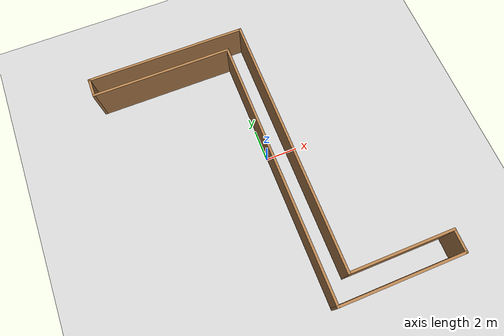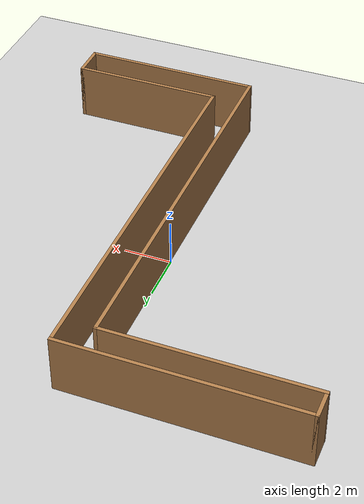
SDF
<sdf version="1.7">
 <world name="default">
  <light name="sun" type="directional">
   <pose>0 0 10 0 -0 0</pose>
   <diffuse>0.8 0.8 0.8 1</diffuse>
   <specular>0.2 0.2 0.2 1</specular>
   <attenuation>
    <range>1000</range>
    <constant>0.9</constant>
    <linear>0.01</linear>
    <quadratic>0.001</quadratic>
   </attenuation>
   <direction>-0.5 0.1 -0.9</direction>
   <spot><inner_angle>0</inner_angle><outer_angle>0</outer_angle><falloff>0</falloff></spot>
  </light>
  <model name="ground_plane">
   <static>1</static>
   <link name="link">
    <collision name="collision">
     <geometry><plane><normal>0 0 1</normal><size>100 100</size></plane></geometry>
     <surface>
      <contact><collide_bitmask>65535</collide_bitmask></contact>
      <friction><ode><mu>100</mu><mu2>50</mu2></ode></friction>
     </surface>
    </collision>
    <visual name="visual">
     <cast_shadows>0</cast_shadows>
     <geometry><plane><normal>0 0 1</normal><size>100 100</size></plane></geometry>
     <material>
      <script><uri>file://media/materials/scripts/gazebo.material</uri><name>Gazebo/Grey</name></script>
     </material>
    </visual>
   </link>
  </model>
  <gravity>0 0 -9.8</gravity>
  <magnetic_field>6e-06 2.3e-05 -4.2e-05</magnetic_field>
  <atmosphere type="adiabatic"/>
  <physics type="ode">
   <max_step_size>0.001</max_step_size>
   <real_time_factor>1</real_time_factor>
   <real_time_update_rate>1000</real_time_update_rate>
  </physics>
  <scene><ambient>0.4 0.4 0.4 1</ambient><background>0.7 0.7 0.7 1</background><shadows>1</shadows></scene>
  <audio><device>default</device></audio>
  <spherical_coordinates>
   <surface_model>EARTH_WGS84</surface_model>
   <latitude_deg>0</latitude_deg>
   <longitude_deg>0</longitude_deg>
   <elevation>0</elevation>
   <heading_deg>0</heading_deg>
  </spherical_coordinates>
  <model name="Zshape">
   <pose>-0.402562 -0.874712 0 0 -0 0</pose>
   <link name="Wall_10">
    <collision name="Wall_10_Collision">
     <geometry><box><size>6.5 0.15 2.5</size></box></geometry>
     <pose>0 0 1.25 0 -0 0</pose>
    </collision>
    <visual name="Wall_10_Visual">
     <pose>0 0 1.25 0 -0 0</pose>
     <geometry><box><size>6.5 0.15 2.5</size></box></geometry>
     <material>
      <script><uri>file://media/materials/scripts/gazebo.material</uri><name>Gazebo/Wood</name></script>
      <ambient>1 1 1 1</ambient>
     </material>
     <meta><layer>0</layer></meta>
    </visual>
    <pose>4.925 -7.5 0 0 -0 0</pose>
   </link>
   <link name="Wall_11">
    <collision name="Wall_11_Collision">
     <geometry><box><size>1.5 0.15 2.5</size></box></geometry>
     <pose>0 0 1.25 0 -0 0</pose>
    </collision>
    <visual name="Wall_11_Visual">
     <pose>0 0 1.25 0 -0 0</pose>
     <geometry><box><size>1.5 0.15 2.5</size></box></geometry>
     <material>
      <script><uri>file://media/materials/scripts/gazebo.material</uri><name>Gazebo/Wood</name></script>
      <ambient>1 1 1 1</ambient>
     </material>
     <meta><layer>0</layer></meta>
    </visual>
    <pose>8.1 -8.175 0 0 -0 -1.5708</pose>
   </link>
   <link name="Wall_4">
    <collision name="Wall_4_Collision">
     <geometry><box><size>7.75 0.15 2.5</size></box></geometry>
     <pose>0 0 1.25 0 -0 0</pose>
    </collision>
    <visual name="Wall_4_Visual">
     <pose>0 0 1.25 0 -0 0</pose>
     <geometry><box><size>7.75 0.15 2.5</size></box></geometry>
     <material>
      <script><uri>file://media/materials/scripts/gazebo.material</uri><name>Gazebo/Wood</name></script>
      <ambient>1 1 1 1</ambient>
     </material>
     <meta><layer>0</layer></meta>
    </visual>
    <pose>4.3 -8.85 0 0 -0 3.14159</pose>
   </link>
   <link name="Wall_5">
    <collision name="Wall_5_Collision">
     <geometry><box><size>16.75 0.15 2.5</size></box></geometry>
     <pose>0 0 1.25 0 -0 0</pose>
    </collision>
    <visual name="Wall_5_Visual">
     <pose>0 0 1.25 0 -0 0</pose>
     <geometry><box><size>16.75 0.15 2.5</size></box></geometry>
     <material>
      <script><uri>file://media/materials/scripts/gazebo.material</uri><name>Gazebo/Wood</name></script>
      <ambient>1 1 1 1</ambient>
     </material>
     <meta><layer>0</layer></meta>
    </visual>
    <pose>0.5 -0.55 0 0 -0 1.5708</pose>
   </link>
   <link name="Wall_6">
    <collision name="Wall_6_Collision">
     <geometry><box><size>8.75 0.15 2.5</size></box></geometry>
     <pose>0 0 1.25 0 -0 0</pose>
    </collision>
    <visual name="Wall_6_Visual">
     <pose>0 0 1.25 0 -0 0</pose>
     <geometry><box><size>8.75 0.15 2.5</size></box></geometry>
     <material>
      <script><uri>file://media/materials/scripts/gazebo.material</uri><name>Gazebo/Wood</name></script>
      <ambient>1 1 1 1</ambient>
     </material>
     <meta><layer>0</layer></meta>
    </visual>
    <pose>-3.8 7.75 0 0 -0 3.14159</pose>
   </link>
   <link name="Wall_7">
    <collision name="Wall_7_Collision">
     <geometry><box><size>1.25 0.15 2.5</size></box></geometry>
     <pose>0 0 1.25 0 -0 0</pose>
    </collision>
    <visual name="Wall_7_Visual">
     <pose>0 0 1.25 0 -0 0</pose>
     <geometry><box><size>1.25 0.15 2.5</size></box></geometry>
     <material>
      <script><uri>file://media/materials/scripts/gazebo.material</uri><name>Gazebo/Wood</name></script>
      <ambient>1 1 1 1</ambient>
     </material>
     <meta><layer>0</layer></meta>
    </visual>
    <pose>-8.1 8.3 0 0 -0 1.5708</pose>
   </link>
   <link name="Wall_8">
    <collision name="Wall_8_Collision">
     <geometry><box><size>10 0.15 2.5</size></box></geometry>
     <pose>0 0 1.25 0 -0 0</pose>
    </collision>
    <visual name="Wall_8_Visual">
     <pose>0 0 1.25 0 -0 0</pose>
     <geometry><box><size>10 0.15 2.5</size></box></geometry>
     <material>
      <script><uri>file://media/materials/scripts/gazebo.material</uri><name>Gazebo/Wood</name></script>
      <ambient>1 1 1 1</ambient>
     </material>
     <meta><layer>0</layer></meta>
    </visual>
    <pose>-3.175 8.85 0 0 -0 0</pose>
   </link>
   <link name="Wall_9">
    <collision name="Wall_9_Collision">
     <geometry><box><size>16.5 0.15 2.5</size></box></geometry>
     <pose>0 0 1.25 0 -0 0</pose>
    </collision>
    <visual name="Wall_9_Visual">
     <pose>0 0 1.25 0 -0 0</pose>
     <geometry><box><size>16.5 0.15 2.5</size></box></geometry>
     <material>
      <script><uri>file://media/materials/scripts/gazebo.material</uri><name>Gazebo/Wood</name></script>
      <ambient>1 1 1 1</ambient>
     </material>
     <meta><layer>0</layer></meta>
    </visual>
    <pose>1.75 0.675 0 0 -0 -1.5708</pose>
   </link>
   <static>1</static>
  </model>
 </world>
</sdf>
